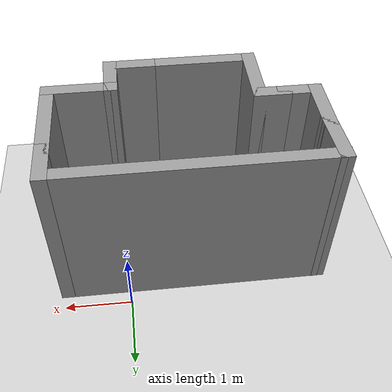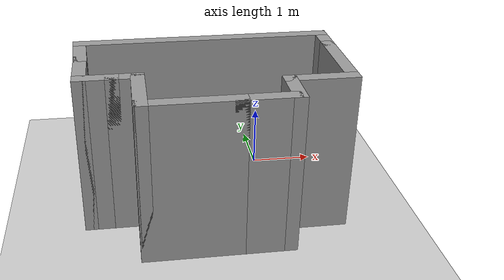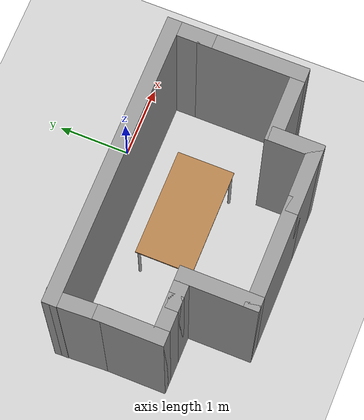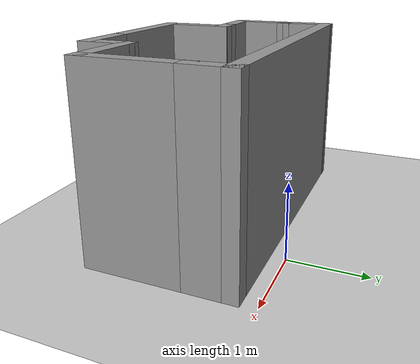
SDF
<sdf version="1.4">
 <world name="default">
  <light name="sun" type="directional">
   <pose>0 0 10 0 -0 0</pose>
   <diffuse>0.8 0.8 0.8 1</diffuse>
   <specular>0.2 0.2 0.2 1</specular>
   <attenuation>
    <range>1000</range>
    <constant>0.9</constant>
    <linear>0.01</linear>
    <quadratic>0.001</quadratic>
   </attenuation>
   <direction>-0.5 0.1 -0.9</direction>
  </light>
  <model name="ground_plane">
   <static>1</static>
   <link name="link">
    <collision name="collision">
     <geometry><plane><normal>0 0 1</normal><size>100 100</size></plane></geometry>
     <surface><friction><ode><mu>100</mu><mu2>50</mu2></ode></friction></surface>
    </collision>
    <visual name="visual">
     <cast_shadows>0</cast_shadows>
     <geometry><plane><normal>0 0 1</normal><size>100 100</size></plane></geometry>
     <material>
      <script><uri>file://media/materials/scripts/gazebo.material</uri><name>Gazebo/Grey</name></script>
     </material>
    </visual>
    <velocity_decay><linear>0</linear><angular>0</angular></velocity_decay>
   </link>
  </model>
  <physics type="ode">
   <max_step_size>0.001</max_step_size>
   <real_time_factor>1</real_time_factor>
   <real_time_update_rate>1000</real_time_update_rate>
   <gravity>0 0 -9.8</gravity>
  </physics>
  <scene><ambient>0.4 0.4 0.4 1</ambient><background>0.7 0.7 0.7 1</background><shadows>1</shadows></scene>
  <spherical_coordinates>
   <surface_model>EARTH_WGS84</surface_model>
   <latitude_deg>0</latitude_deg>
   <longitude_deg>0</longitude_deg>
   <elevation>0</elevation>
   <heading_deg>0</heading_deg>
  </spherical_coordinates>
  <model name="BuildingDefaultName">
   <link name="Wall_0">
    <collision name="Wall_0_Collision">
     <geometry><box><size>0.93 0.2 2.5</size></box></geometry>
     <pose>0 0 1.25 0 -0 0</pose>
    </collision>
    <visual name="Wall_0_Visual">
     <pose>0 0 1.25 0 -0 0</pose>
     <geometry><box><size>0.93 0.2 2.5</size></box></geometry>
     <material>
      <script><uri>file://media/materials/scripts/gazebo.material</uri><name>Gazebo/Grey</name></script>
     </material>
    </visual>
    <velocity_decay><linear>0</linear><angular>0</angular></velocity_decay>
    <pose>-2.9 -1.505 0 0 0 -1.5708</pose>
   </link>
   <link name="Wall_1">
    <collision name="Wall_1_Collision">
     <geometry><box><size>0.66 0.2 2.5</size></box></geometry>
     <pose>0 0 1.25 0 -0 0</pose>
    </collision>
    <visual name="Wall_1_Visual">
     <pose>0 0 1.25 0 -0 0</pose>
     <geometry><box><size>0.66 0.2 2.5</size></box></geometry>
     <material>
      <script><uri>file://media/materials/scripts/gazebo.material</uri><name>Gazebo/Grey</name></script>
     </material>
    </visual>
    <velocity_decay><linear>0</linear><angular>0</angular></velocity_decay>
    <pose>-2.67 -1.87 0 0 -0 0</pose>
   </link>
   <link name="Wall_10">
    <collision name="Wall_10_Collision">
     <geometry><box><size>4.06 0.2 2.5</size></box></geometry>
     <pose>0 0 1.25 0 -0 0</pose>
    </collision>
    <visual name="Wall_10_Visual">
     <pose>0 0 1.25 0 -0 0</pose>
     <geometry><box><size>4.06 0.2 2.5</size></box></geometry>
     <material>
      <script><uri>file://media/materials/scripts/gazebo.material</uri><name>Gazebo/Grey</name></script>
     </material>
    </visual>
    <velocity_decay><linear>0</linear><angular>0</angular></velocity_decay>
    <pose>-1 -0.49 0 0 -0 3.14159</pose>
   </link>
   <link name="Wall_11">
    <collision name="Wall_11_Collision">
     <geometry><box><size>0.850692 0.2 2.5</size></box></geometry>
     <pose>0 0 1.25 0 -0 0</pose>
    </collision>
    <visual name="Wall_11_Visual">
     <pose>0 0 1.25 0 -0 0</pose>
     <geometry><box><size>0.850692 0.2 2.5</size></box></geometry>
     <material>
      <script><uri>file://media/materials/scripts/gazebo.material</uri><name>Gazebo/Grey</name></script>
     </material>
    </visual>
    <velocity_decay><linear>0</linear><angular>0</angular></velocity_decay>
    <pose>-2.915 -0.815 0 0 0 -1.52468</pose>
   </link>
   <link name="Wall_2">
    <collision name="Wall_2_Collision">
     <geometry><box><size>0.56 0.2 2.5</size></box></geometry>
     <pose>0 0 1.25 0 -0 0</pose>
    </collision>
    <visual name="Wall_2_Visual">
     <pose>0 0 1.25 0 -0 0</pose>
     <geometry><box><size>0.56 0.2 2.5</size></box></geometry>
     <material>
      <script><uri>file://media/materials/scripts/gazebo.material</uri><name>Gazebo/Grey</name></script>
     </material>
    </visual>
    <velocity_decay><linear>0</linear><angular>0</angular></velocity_decay>
    <pose>-2.26 -1.87 0 0 -0 0</pose>
   </link>
   <link name="Wall_3">
    <collision name="Wall_3_Collision">
     <geometry><box><size>1.1 0.2 2.5</size></box></geometry>
     <pose>0 0 1.25 0 -0 0</pose>
    </collision>
    <visual name="Wall_3_Visual">
     <pose>0 0 1.25 0 -0 0</pose>
     <geometry><box><size>1.1 0.2 2.5</size></box></geometry>
     <material>
      <script><uri>file://media/materials/scripts/gazebo.material</uri><name>Gazebo/Grey</name></script>
     </material>
    </visual>
    <velocity_decay><linear>0</linear><angular>0</angular></velocity_decay>
    <pose>-2.08 -2.32 0 0 0 -1.5708</pose>
   </link>
   <link name="Wall_4">
    <collision name="Wall_4_Collision">
     <geometry><box><size>1.53 0.2 2.5</size></box></geometry>
     <pose>0 0 1.25 0 -0 0</pose>
    </collision>
    <visual name="Wall_4_Visual">
     <pose>0 0 1.25 0 -0 0</pose>
     <geometry><box><size>1.53 0.2 2.5</size></box></geometry>
     <material>
      <script><uri>file://media/materials/scripts/gazebo.material</uri><name>Gazebo/Grey</name></script>
     </material>
    </visual>
    <velocity_decay><linear>0</linear><angular>0</angular></velocity_decay>
    <pose>-1.415 -2.77 0 0 -0 0</pose>
   </link>
   <link name="Wall_5">
    <collision name="Wall_5_Collision">
     <geometry><box><size>0.98 0.2 2.5</size></box></geometry>
     <pose>0 0 1.25 0 -0 0</pose>
    </collision>
    <visual name="Wall_5_Visual">
     <pose>0 0 1.25 0 -0 0</pose>
     <geometry><box><size>0.98 0.2 2.5</size></box></geometry>
     <material>
      <script><uri>file://media/materials/scripts/gazebo.material</uri><name>Gazebo/Grey</name></script>
     </material>
    </visual>
    <velocity_decay><linear>0</linear><angular>0</angular></velocity_decay>
    <pose>-0.36 -2.77 0 0 -0 0</pose>
   </link>
   <link name="Wall_6">
    <collision name="Wall_6_Collision">
     <geometry><box><size>0.74 0.2 2.5</size></box></geometry>
     <pose>0 0 1.25 0 -0 0</pose>
    </collision>
    <visual name="Wall_6_Visual">
     <pose>0 0 1.25 0 -0 0</pose>
     <geometry><box><size>0.74 0.2 2.5</size></box></geometry>
     <material>
      <script><uri>file://media/materials/scripts/gazebo.material</uri><name>Gazebo/Grey</name></script>
     </material>
    </visual>
    <velocity_decay><linear>0</linear><angular>0</angular></velocity_decay>
    <pose>0.03 -2.5 0 0 -0 1.5708</pose>
   </link>
   <link name="Wall_7">
    <collision name="Wall_7_Collision">
     <geometry><box><size>1.1 0.2 2.5</size></box></geometry>
     <pose>0 0 1.25 0 -0 0</pose>
    </collision>
    <visual name="Wall_7_Visual">
     <pose>0 0 1.25 0 -0 0</pose>
     <geometry><box><size>1.1 0.2 2.5</size></box></geometry>
     <material>
      <script><uri>file://media/materials/scripts/gazebo.material</uri><name>Gazebo/Grey</name></script>
     </material>
    </visual>
    <velocity_decay><linear>0</linear><angular>0</angular></velocity_decay>
    <pose>0.48 -2.23 0 0 -0 0</pose>
   </link>
   <link name="Wall_8">
    <collision name="Wall_8_Collision">
     <geometry><box><size>1.46 0.2 2.5</size></box></geometry>
     <pose>0 0 1.25 0 -0 0</pose>
    </collision>
    <visual name="Wall_8_Visual">
     <pose>0 0 1.25 0 -0 0</pose>
     <geometry><box><size>1.46 0.2 2.5</size></box></geometry>
     <material>
      <script><uri>file://media/materials/scripts/gazebo.material</uri><name>Gazebo/Grey</name></script>
     </material>
    </visual>
    <velocity_decay><linear>0</linear><angular>0</angular></velocity_decay>
    <pose>0.93 -1.6 0 0 -0 1.5708</pose>
   </link>
   <link name="Wall_9">
    <collision name="Wall_9_Collision">
     <geometry><box><size>0.68 0.2 2.5</size></box></geometry>
     <pose>0 0 1.25 0 -0 0</pose>
    </collision>
    <visual name="Wall_9_Visual">
     <pose>0 0 1.25 0 -0 0</pose>
     <geometry><box><size>0.68 0.2 2.5</size></box></geometry>
     <material>
      <script><uri>file://media/materials/scripts/gazebo.material</uri><name>Gazebo/Grey</name></script>
     </material>
    </visual>
    <velocity_decay><linear>0</linear><angular>0</angular></velocity_decay>
    <pose>0.93 -0.73 0 0 -0 1.5708</pose>
   </link>
   <static>1</static>
   <pose>0.02597 0.19802 0 0 -0 0</pose>
  </model>
  <model name="table">
   <static>1</static>
   <link name="link">
    <collision name="surface">
     <pose>0 0 1 0 -0 0</pose>
     <geometry><box><size>1.5 0.8 0.03</size></box></geometry>
     <surface><friction><ode><mu>0.6</mu><mu2>0.6</mu2></ode></friction></surface>
    </collision>
    <visual name="visual1">
     <pose>0 0 1 0 -0 0</pose>
     <geometry><box><size>1.5 0.8 0.03</size></box></geometry>
     <material>
      <script><uri>file://media/materials/scripts/gazebo.material</uri><name>Gazebo/Wood</name></script>
     </material>
    </visual>
    <collision name="front_left_leg">
     <pose>0.68 0.38 0.5 0 -0 0</pose>
     <geometry><cylinder><radius>0.02</radius><length>1</length></cylinder></geometry>
    </collision>
    <visual name="front_left_leg">
     <pose>0.68 0.38 0.5 0 -0 0</pose>
     <geometry><cylinder><radius>0.02</radius><length>1</length></cylinder></geometry>
     <material>
      <script><uri>file://media/materials/scripts/gazebo.material</uri><name>Gazebo/Grey</name></script>
     </material>
    </visual>
    <collision name="front_right_leg">
     <pose>0.68 -0.38 0.5 0 -0 0</pose>
     <geometry><cylinder><radius>0.02</radius><length>1</length></cylinder></geometry>
    </collision>
    <visual name="front_right_leg">
     <pose>0.68 -0.38 0.5 0 -0 0</pose>
     <geometry><cylinder><radius>0.02</radius><length>1</length></cylinder></geometry>
     <material>
      <script><uri>file://media/materials/scripts/gazebo.material</uri><name>Gazebo/Grey</name></script>
     </material>
    </visual>
    <collision name="back_right_leg">
     <pose>-0.68 -0.38 0.5 0 -0 0</pose>
     <geometry><cylinder><radius>0.02</radius><length>1</length></cylinder></geometry>
    </collision>
    <visual name="back_right_leg">
     <pose>-0.68 -0.38 0.5 0 -0 0</pose>
     <geometry><cylinder><radius>0.02</radius><length>1</length></cylinder></geometry>
     <material>
      <script><uri>file://media/materials/scripts/gazebo.material</uri><name>Gazebo/Grey</name></script>
     </material>
    </visual>
    <collision name="back_left_leg">
     <pose>-0.68 0.38 0.5 0 -0 0</pose>
     <geometry><cylinder><radius>0.02</radius><length>1</length></cylinder></geometry>
    </collision>
    <visual name="back_left_leg">
     <pose>-0.68 0.38 0.5 0 -0 0</pose>
     <geometry><cylinder><radius>0.02</radius><length>1</length></cylinder></geometry>
     <material>
      <script><uri>file://media/materials/scripts/gazebo.material</uri><name>Gazebo/Grey</name></script>
     </material>
    </visual>
    <velocity_decay><linear>0</linear><angular>0</angular></velocity_decay>
   </link>
   <pose>-0.828766 -1.19278 0 0 -0 0</pose>
  </model>
 </world>
</sdf>
